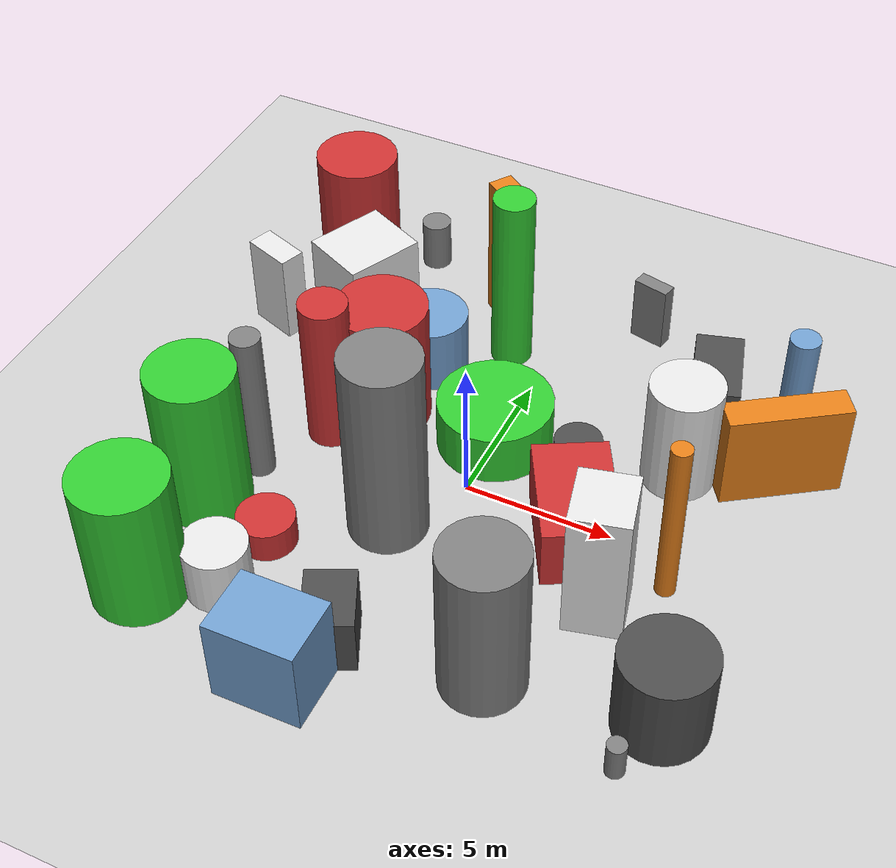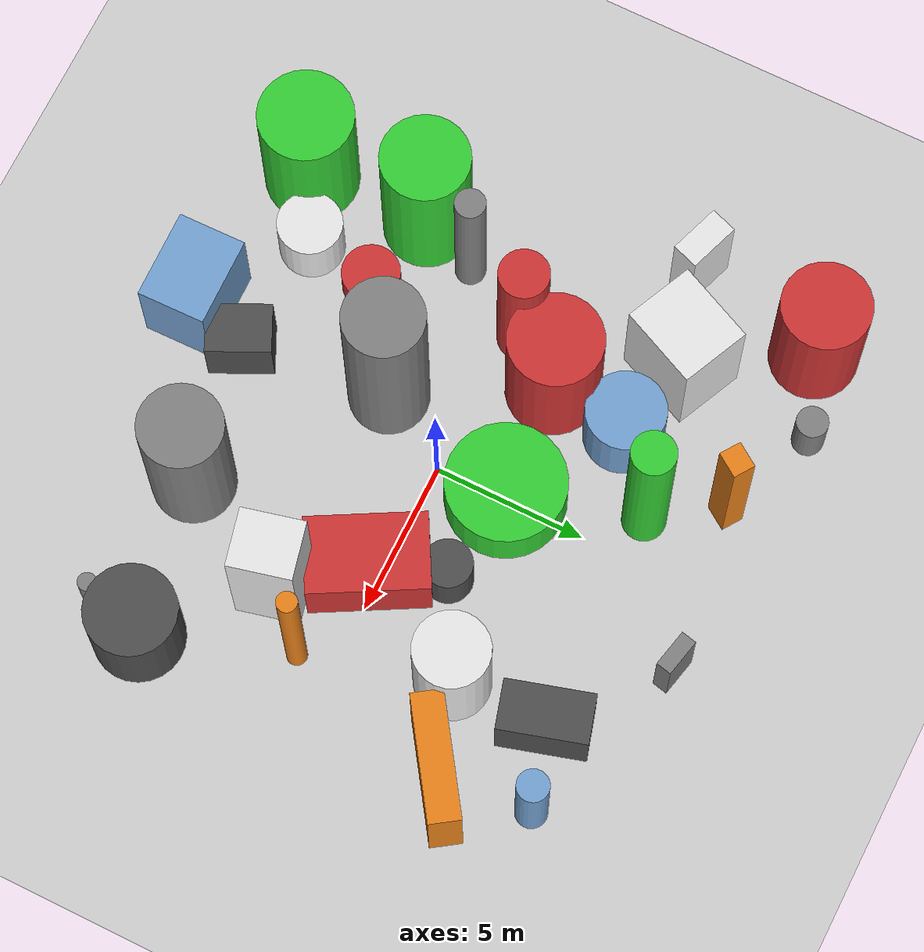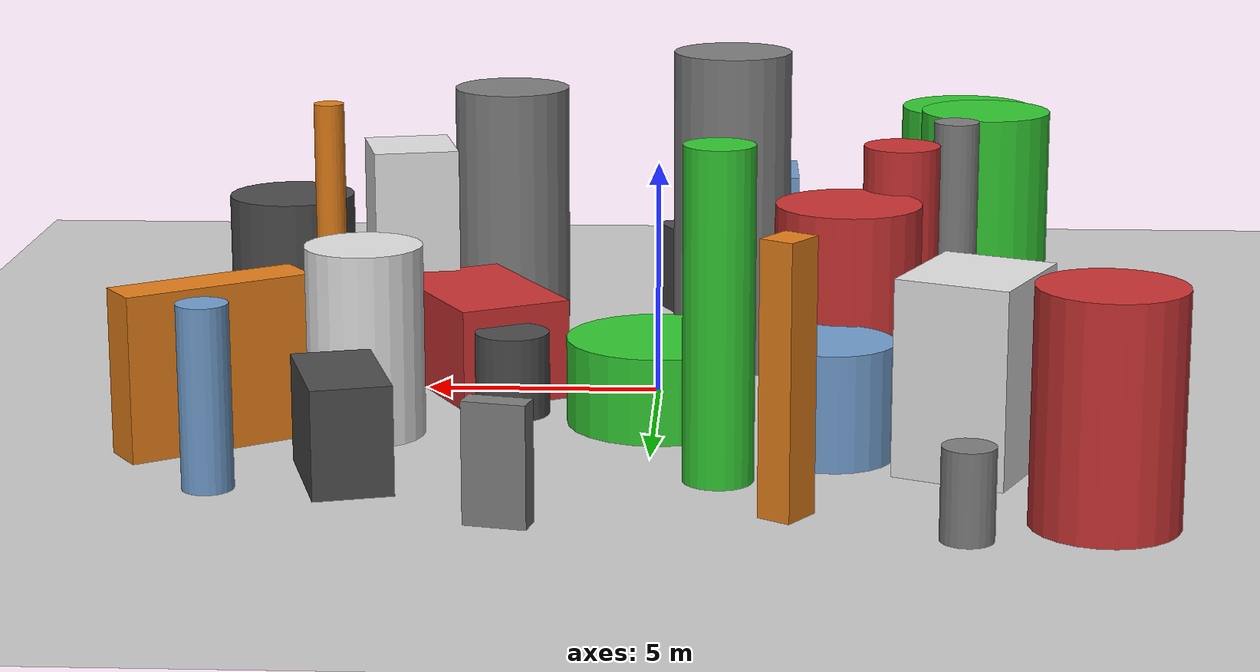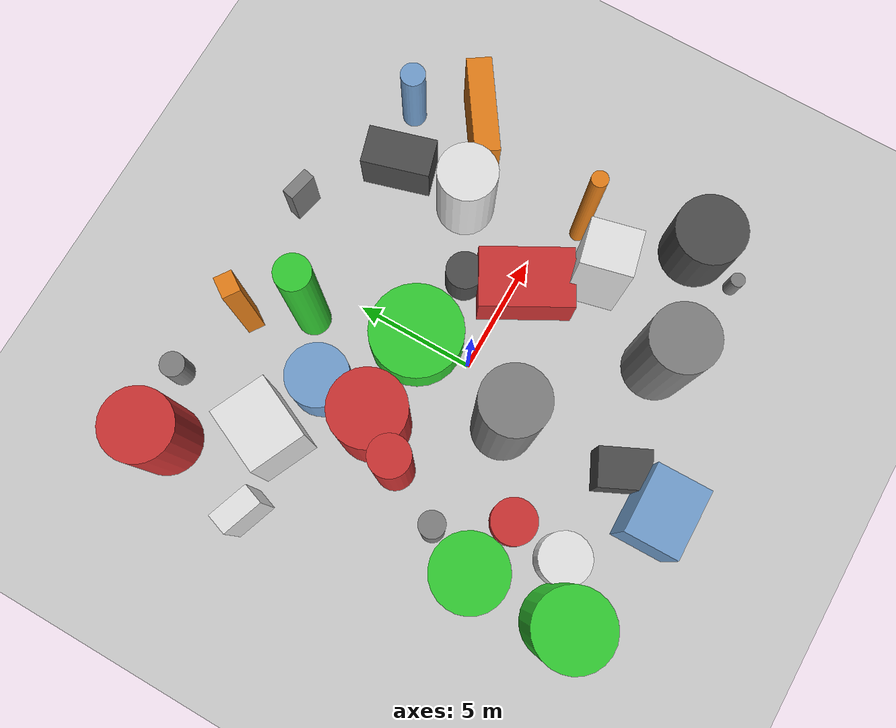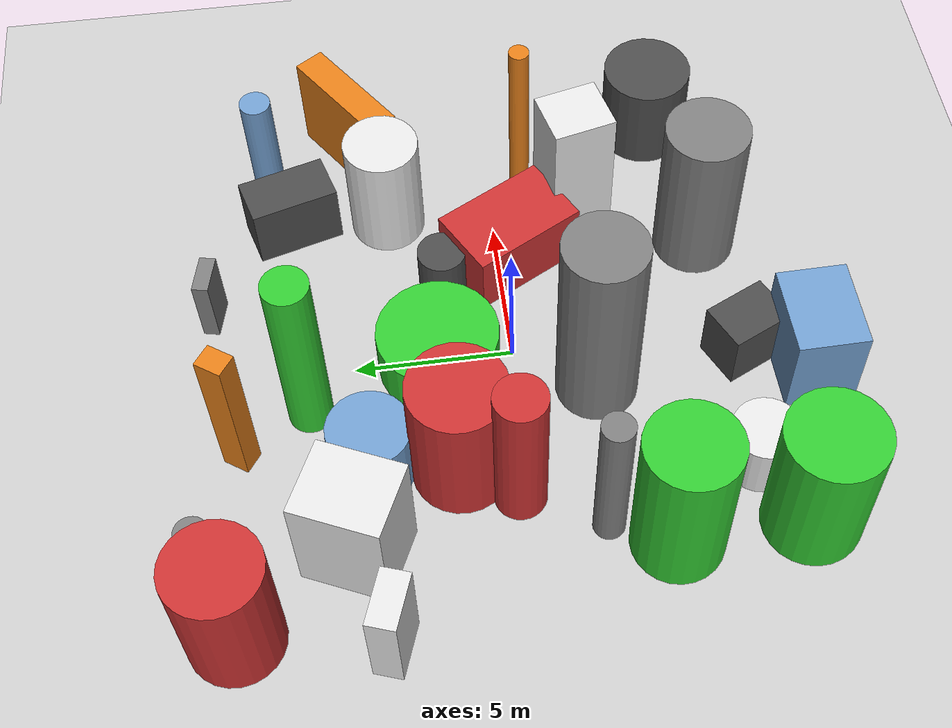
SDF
<?xml version='1.0'?>
<sdf version='1.6'>
  <world name='default'>
    <!-- Sun light -->
    <light name='sun' type='directional'>
      <cast_shadows>1</cast_shadows>
      <pose>0 0 10 0 0 0</pose>
      <diffuse>0.8 0.8 0.8 1</diffuse>
      <specular>0.2 0.2 0.2 1</specular>
      <attenuation>
        <range>1000</range>
        <constant>0.9</constant>
        <linear>0.01</linear>
        <quadratic>0.001</quadratic>
      </attenuation>
      <direction>-0.5 0.1 -0.9</direction>
    </light>

    <!-- Ground plane -->
    <model name='ground_plane'>
      <static>1</static>
      <link name='link'>
        <collision name='collision'>
          <geometry>
            <plane>
              <normal>0 0 1</normal>
              <size>100 100</size>
            </plane>
          </geometry>
          <surface>
            <contact>
              <collide_bitmask>65535</collide_bitmask>
              <ode/>
            </contact>
            <friction>
              <ode>
                <mu>100</mu>
                <mu2>50</mu2>
              </ode>
              <torsional><ode/></torsional>
            </friction>
            <bounce/>
          </surface>
          <max_contacts>10</max_contacts>
        </collision>
        <visual name='visual'>
          <cast_shadows>0</cast_shadows>
          <geometry>
            <plane>
              <normal>0 0 1</normal>
              <size>100 100</size>
            </plane>
          </geometry>
          <material>
            <script>
              <uri>file://media/materials/scripts/gazebo.material</uri>
              <n>Gazebo/Grey</n>
            </script>
          </material>
        </visual>
      </link>
    </model>

    <!-- Environment -->
    <magnetic_field>6e-06 2.3e-05 -4.2e-05</magnetic_field>
    <atmosphere type='adiabatic'/>
    <physics name='default_physics' default='0' type='ode'>
      <gravity>0 0 -9.8</gravity>
      <max_step_size>0.004</max_step_size>
      <real_time_factor>1</real_time_factor>
      <real_time_update_rate>250</real_time_update_rate>
    </physics>
    <scene>
      <ambient>0.4 0.4 0.4 1</ambient>
      <background>0.7 0.7 0.7 1</background>
      <shadows>1</shadows>
    </scene>
    <wind/>
    <spherical_coordinates>
      <surface_model>EARTH_WGS84</surface_model>
      <latitude_deg>0</latitude_deg>
      <longitude_deg>0</longitude_deg>
      <elevation>0</elevation>
      <heading_deg>0</heading_deg>
    </spherical_coordinates>

    <!-- ============ OBSTACLES (30) ============ -->
    <model name='obs_00'>
      <static>1</static>
      <link name='link'>
        <visual name='visual'>
          <geometry>
            <cylinder>
              <radius>0.8068</radius>
              <length>5.5290</length>
            </cylinder>
          </geometry>
          <material>
            <script>
              <n>Gazebo/Red</n>
              <uri>file://media/materials/scripts/gazebo.material</uri>
            </script>
            <ambient>0.8 0.2 0.2 1</ambient>
          </material>
        </visual>
        <collision name='collision'>
          <geometry>
            <cylinder>
              <radius>0.8068</radius>
              <length>5.5290</length>
            </cylinder>
          </geometry>
          <max_contacts>10</max_contacts>
          <surface>
            <contact><ode/></contact>
            <bounce/>
            <friction>
              <ode><mu>1</mu><mu2>1</mu2></ode>
              <torsional><ode/></torsional>
            </friction>
          </surface>
        </collision>
      </link>
      <pose>-5.1451 0.4221 2.7645 0 0 2.0659</pose>
    </model>

    <model name='obs_01'>
      <static>1</static>
      <link name='link'>
        <visual name='visual'>
          <geometry>
            <cylinder>
              <radius>1.3433</radius>
              <length>5.5272</length>
            </cylinder>
          </geometry>
          <material>
            <script>
              <n>Gazebo/Grey</n>
              <uri>file://media/materials/scripts/gazebo.material</uri>
            </script>
            <ambient>0.5 0.5 0.5 1</ambient>
          </material>
        </visual>
        <collision name='collision'>
          <geometry>
            <cylinder>
              <radius>1.3433</radius>
              <length>5.5272</length>
            </cylinder>
          </geometry>
          <max_contacts>10</max_contacts>
          <surface>
            <contact><ode/></contact>
            <bounce/>
            <friction>
              <ode><mu>1</mu><mu2>1</mu2></ode>
              <torsional><ode/></torsional>
            </friction>
          </surface>
        </collision>
      </link>
      <pose>3.7063 -6.6100 2.7636 0 0 1.7694</pose>
    </model>

    <model name='obs_02'>
      <static>1</static>
      <link name='link'>
        <visual name='visual'>
          <geometry>
            <cylinder>
              <radius>0.9463</radius>
              <length>1.0738</length>
            </cylinder>
          </geometry>
          <material>
            <script>
              <n>Gazebo/Red</n>
              <uri>file://media/materials/scripts/gazebo.material</uri>
            </script>
            <ambient>0.8 0.2 0.2 1</ambient>
          </material>
        </visual>
        <collision name='collision'>
          <geometry>
            <cylinder>
              <radius>0.9463</radius>
              <length>1.0738</length>
            </cylinder>
          </geometry>
          <max_contacts>10</max_contacts>
          <surface>
            <contact><ode/></contact>
            <bounce/>
            <friction>
              <ode><mu>1</mu><mu2>1</mu2></ode>
              <torsional><ode/></torsional>
            </friction>
          </surface>
        </collision>
      </link>
      <pose>-4.6216 -4.6319 0.5369 0 0 3.0339</pose>
    </model>

    <model name='obs_03'>
      <static>1</static>
      <link name='link'>
        <visual name='visual'>
          <geometry>
            <cylinder>
              <radius>1.5317</radius>
              <length>4.9060</length>
            </cylinder>
          </geometry>
          <material>
            <script>
              <n>Gazebo/Green</n>
              <uri>file://media/materials/scripts/gazebo.material</uri>
            </script>
            <ambient>0.2 0.8 0.2 1</ambient>
          </material>
        </visual>
        <collision name='collision'>
          <geometry>
            <cylinder>
              <radius>1.5317</radius>
              <length>4.9060</length>
            </cylinder>
          </geometry>
          <max_contacts>10</max_contacts>
          <surface>
            <contact><ode/></contact>
            <bounce/>
            <friction>
              <ode><mu>1</mu><mu2>1</mu2></ode>
              <torsional><ode/></torsional>
            </friction>
          </surface>
        </collision>
      </link>
      <pose>-7.0813 -8 2.4530 0 0 0.6974</pose>
    </model>

    <model name='obs_04'>
      <static>1</static>
      <link name='link'>
        <visual name='visual'>
          <geometry>
            <box>
              <size>2.0602 1.8690 4.8617</size>
            </box>
          </geometry>
          <material>
            <script>
              <n>Gazebo/White</n>
              <uri>file://media/materials/scripts/gazebo.material</uri>
            </script>
            <ambient>0.9 0.9 0.9 1</ambient>
          </material>
        </visual>
        <collision name='collision'>
          <geometry>
            <box>
              <size>2.0602 1.8690 4.8617</size>
            </box>
          </geometry>
          <max_contacts>10</max_contacts>
          <surface>
            <contact><ode/></contact>
            <bounce/>
            <friction>
              <ode><mu>1</mu><mu2>1</mu2></ode>
              <torsional><ode/></torsional>
            </friction>
          </surface>
        </collision>
      </link>
      <pose>5.6533 -2.7775 2.4309 0 0 1.8072</pose>
    </model>

    <model name='obs_05'>
      <static>1</static>
      <link name='link'>
        <visual name='visual'>
          <geometry>
            <box>
              <size>1.0276 3.9920 3.4139</size>
            </box>
          </geometry>
          <material>
            <script>
              <n>Gazebo/Orange</n>
              <uri>file://media/materials/scripts/gazebo.material</uri>
            </script>
            <ambient>0.9 0.5 0.1 1</ambient>
          </material>
        </visual>
        <collision name='collision'>
          <geometry>
            <box>
              <size>1.0276 3.9920 3.4139</size>
            </box>
          </geometry>
          <max_contacts>10</max_contacts>
          <surface>
            <contact><ode/></contact>
            <bounce/>
            <friction>
              <ode><mu>1</mu><mu2>1</mu2></ode>
              <torsional><ode/></torsional>
            </friction>
          </surface>
        </collision>
      </link>
      <pose>8.8844 4.4180 1.7069 0 0 2.1691</pose>
    </model>

    <model name='obs_06'>
      <static>1</static>
      <link name='link'>
        <visual name='visual'>
          <geometry>
            <cylinder>
              <radius>1.9292</radius>
              <length>1.8125</length>
            </cylinder>
          </geometry>
          <material>
            <script>
              <n>Gazebo/Green</n>
              <uri>file://media/materials/scripts/gazebo.material</uri>
            </script>
            <ambient>0.2 0.8 0.2 1</ambient>
          </material>
        </visual>
        <collision name='collision'>
          <geometry>
            <cylinder>
              <radius>1.9292</radius>
              <length>1.8125</length>
            </cylinder>
          </geometry>
          <max_contacts>10</max_contacts>
          <surface>
            <contact><ode/></contact>
            <bounce/>
            <friction>
              <ode><mu>1</mu><mu2>1</mu2></ode>
              <torsional><ode/></torsional>
            </friction>
          </surface>
        </collision>
      </link>
      <pose>-0.0840 2.3334 0.9062 0 0 1.3068</pose>
    </model>

    <model name='obs_07'>
      <static>1</static>
      <link name='link'>
        <visual name='visual'>
          <geometry>
            <box>
              <size>1.5916 2.0937 2.0343</size>
            </box>
          </geometry>
          <material>
            <script>
              <n>Gazebo/DarkGrey</n>
              <uri>file://media/materials/scripts/gazebo.material</uri>
            </script>
            <ambient>0.3 0.3 0.3 1</ambient>
          </material>
        </visual>
        <collision name='collision'>
          <geometry>
            <box>
              <size>1.5916 2.0937 2.0343</size>
            </box>
          </geometry>
          <max_contacts>10</max_contacts>
          <surface>
            <contact><ode/></contact>
            <bounce/>
            <friction>
              <ode><mu>1</mu><mu2>1</mu2></ode>
              <torsional><ode/></torsional>
            </friction>
          </surface>
        </collision>
      </link>
      <pose>-0.8428 -7.2902 1.0172 0 0 0.4451</pose>
    </model>

    <model name='obs_08'>
      <static>1</static>
      <link name='link'>
        <visual name='visual'>
          <geometry>
            <cylinder>
              <radius>0.3306</radius>
              <length>6.0540</length>
            </cylinder>
          </geometry>
          <material>
            <script>
              <n>Gazebo/Orange</n>
              <uri>file://media/materials/scripts/gazebo.material</uri>
            </script>
            <ambient>0.9 0.5 0.1 1</ambient>
          </material>
        </visual>
        <collision name='collision'>
          <geometry>
            <cylinder>
              <radius>0.3306</radius>
              <length>6.0540</length>
            </cylinder>
          </geometry>
          <max_contacts>10</max_contacts>
          <surface>
            <contact><ode/></contact>
            <bounce/>
            <friction>
              <ode><mu>1</mu><mu2>1</mu2></ode>
              <torsional><ode/></torsional>
            </friction>
          </surface>
        </collision>
      </link>
      <pose>7.2440 -1.1955 3.0270 0 0 1.0942</pose>
    </model>

    <model name='obs_09'>
      <static>1</static>
      <link name='link'>
        <visual name='visual'>
          <geometry>
            <cylinder>
              <radius>0.7055</radius>
              <length>6.6713</length>
            </cylinder>
          </geometry>
          <material>
            <script>
              <n>Gazebo/Green</n>
              <uri>file://media/materials/scripts/gazebo.material</uri>
            </script>
            <ambient>0.2 0.8 0.2 1</ambient>
          </material>
        </visual>
        <collision name='collision'>
          <geometry>
            <cylinder>
              <radius>0.7055</radius>
              <length>6.6713</length>
            </cylinder>
          </geometry>
          <max_contacts>10</max_contacts>
          <surface>
            <contact><ode/></contact>
            <bounce/>
            <friction>
              <ode><mu>1</mu><mu2>1</mu2></ode>
              <torsional><ode/></torsional>
            </friction>
          </surface>
        </collision>
      </link>
      <pose>-1.3877 6.4707 3.3357 0 0 1.0019</pose>
    </model>

    <model name='obs_10'>
      <static>1</static>
      <link name='link'>
        <visual name='visual'>
          <geometry>
            <cylinder>
              <radius>0.7847</radius>
              <length>1.7655</length>
            </cylinder>
          </geometry>
          <material>
            <script>
              <n>Gazebo/DarkGrey</n>
              <uri>file://media/materials/scripts/gazebo.material</uri>
            </script>
            <ambient>0.3 0.3 0.3 1</ambient>
          </material>
        </visual>
        <collision name='collision'>
          <geometry>
            <cylinder>
              <radius>0.7847</radius>
              <length>1.7655</length>
            </cylinder>
          </geometry>
          <max_contacts>10</max_contacts>
          <surface>
            <contact><ode/></contact>
            <bounce/>
            <friction>
              <ode><mu>1</mu><mu2>1</mu2></ode>
              <torsional><ode/></torsional>
            </friction>
          </surface>
        </collision>
      </link>
      <pose>3.0207 1.8879 0.8828 0 0 0.0710</pose>
    </model>

    <model name='obs_11'>
      <static>1</static>
      <link name='link'>
        <visual name='visual'>
          <geometry>
            <cylinder>
              <radius>1.5199</radius>
              <length>4.6120</length>
            </cylinder>
          </geometry>
          <material>
            <script>
              <n>Gazebo/Red</n>
              <uri>file://media/materials/scripts/gazebo.material</uri>
            </script>
            <ambient>0.8 0.2 0.2 1</ambient>
          </material>
        </visual>
        <collision name='collision'>
          <geometry>
            <cylinder>
              <radius>1.5199</radius>
              <length>4.6120</length>
            </cylinder>
          </geometry>
          <max_contacts>10</max_contacts>
          <surface>
            <contact><ode/></contact>
            <bounce/>
            <friction>
              <ode><mu>1</mu><mu2>1</mu2></ode>
              <torsional><ode/></torsional>
            </friction>
          </surface>
        </collision>
      </link>
      <pose>-3.9913 2.0642 2.3060 0 0 2.9214</pose>
    </model>

    <model name='obs_12'>
      <static>1</static>
      <link name='link'>
        <visual name='visual'>
          <geometry>
            <box>
              <size>2.4595 3.8546 2.1593</size>
            </box>
          </geometry>
          <material>
            <script>
              <n>Gazebo/Red</n>
              <uri>file://media/materials/scripts/gazebo.material</uri>
            </script>
            <ambient>0.8 0.2 0.2 1</ambient>
          </material>
        </visual>
        <collision name='collision'>
          <geometry>
            <box>
              <size>2.4595 3.8546 2.1593</size>
            </box>
          </geometry>
          <max_contacts>10</max_contacts>
          <surface>
            <contact><ode/></contact>
            <bounce/>
            <friction>
              <ode><mu>1</mu><mu2>1</mu2></ode>
              <torsional><ode/></torsional>
            </friction>
          </surface>
        </collision>
      </link>
      <pose>3.9058 -0.4198 1.0796 0 0 0.5031</pose>
    </model>

    <model name='obs_13'>
      <static>1</static>
      <link name='link'>
        <visual name='visual'>
          <geometry>
            <cylinder>
              <radius>0.4948</radius>
              <length>5.6012</length>
            </cylinder>
          </geometry>
          <material>
            <script>
              <n>Gazebo/Grey</n>
              <uri>file://media/materials/scripts/gazebo.material</uri>
            </script>
            <ambient>0.5 0.5 0.5 1</ambient>
          </material>
        </visual>
        <collision name='collision'>
          <geometry>
            <cylinder>
              <radius>0.4948</radius>
              <length>5.6012</length>
            </cylinder>
          </geometry>
          <max_contacts>10</max_contacts>
          <surface>
            <contact><ode/></contact>
            <bounce/>
            <friction>
              <ode><mu>1</mu><mu2>1</mu2></ode>
              <torsional><ode/></torsional>
            </friction>
          </surface>
        </collision>
      </link>
      <pose>-6.4473 -2.0352 2.8006 0 0 1.9785</pose>
    </model>

    <model name='obs_14'>
      <static>1</static>
      <link name='link'>
        <visual name='visual'>
          <geometry>
            <cylinder>
              <radius>1.2861</radius>
              <length>2.3813</length>
            </cylinder>
          </geometry>
          <material>
            <script>
              <n>Gazebo/Blue</n>
              <uri>file://media/materials/scripts/gazebo.material</uri>
            </script>
            <ambient>0.447 0.624 0.812 1</ambient>
          </material>
        </visual>
        <collision name='collision'>
          <geometry>
            <cylinder>
              <radius>1.2861</radius>
              <length>2.3813</length>
            </cylinder>
          </geometry>
          <max_contacts>10</max_contacts>
          <surface>
            <contact><ode/></contact>
            <bounce/>
            <friction>
              <ode><mu>1</mu><mu2>1</mu2></ode>
              <torsional><ode/></torsional>
            </friction>
          </surface>
        </collision>
      </link>
      <pose>-3.6172 4.6975 1.1906 0 0 0.0917</pose>
    </model>

    <model name='obs_15'>
      <static>1</static>
      <link name='link'>
        <visual name='visual'>
          <geometry>
            <box>
              <size>0.5156 1.2518 2.3917</size>
            </box>
          </geometry>
          <material>
            <script>
              <n>Gazebo/Grey</n>
              <uri>file://media/materials/scripts/gazebo.material</uri>
            </script>
            <ambient>0.5 0.5 0.5 1</ambient>
          </material>
        </visual>
        <collision name='collision'>
          <geometry>
            <box>
              <size>0.5156 1.2518 2.3917</size>
            </box>
          </geometry>
          <max_contacts>10</max_contacts>
          <surface>
            <contact><ode/></contact>
            <bounce/>
            <friction>
              <ode><mu>1</mu><mu2>1</mu2></ode>
              <torsional><ode/></torsional>
            </friction>
          </surface>
        </collision>
      </link>
      <pose>2.6580 9.3553 1.1959 0 0 1.3495</pose>
    </model>

    <model name='obs_16'>
      <static>1</static>
      <link name='link'>
        <visual name='visual'>
          <geometry>
            <box>
              <size>0.7190 0.8561 5.3599</size>
            </box>
          </geometry>
          <material>
            <script>
              <n>Gazebo/Orange</n>
              <uri>file://media/materials/scripts/gazebo.material</uri>
            </script>
            <ambient>0.9 0.5 0.1 1</ambient>
          </material>
        </visual>
        <collision name='collision'>
          <geometry>
            <box>
              <size>0.7190 0.8561 5.3599</size>
            </box>
          </geometry>
          <max_contacts>10</max_contacts>
          <surface>
            <contact><ode/></contact>
            <bounce/>
            <friction>
              <ode><mu>1</mu><mu2>1</mu2></ode>
              <torsional><ode/></torsional>
            </friction>
          </surface>
        </collision>
      </link>
      <pose>-2.6997 8.6413 2.6799 0 0 2.5407</pose>
    </model>

    <model name='obs_17'>
      <static>1</static>
      <link name='link'>
        <visual name='visual'>
          <geometry>
            <cylinder>
              <radius>0.5146</radius>
              <length>1.7977</length>
            </cylinder>
          </geometry>
          <material>
            <script>
              <n>Gazebo/Grey</n>
              <uri>file://media/materials/scripts/gazebo.material</uri>
            </script>
            <ambient>0.5 0.5 0.5 1</ambient>
          </material>
        </visual>
        <collision name='collision'>
          <geometry>
            <cylinder>
              <radius>0.5146</radius>
              <length>1.7977</length>
            </cylinder>
          </geometry>
          <max_contacts>10</max_contacts>
          <surface>
            <contact><ode/></contact>
            <bounce/>
            <friction>
              <ode><mu>1</mu><mu2>1</mu2></ode>
              <torsional><ode/></torsional>
            </friction>
          </surface>
        </collision>
      </link>
      <pose>-6.0040 9.9453 0.8988 0 0 1.1492</pose>
    </model>

    <model name='obs_18'>
      <static>1</static>
      <link name='link'>
        <visual name='visual'>
          <geometry>
            <box>
              <size>2.3470 2.7369 3.9849</size>
            </box>
          </geometry>
          <material>
            <script>
              <n>Gazebo/White</n>
              <uri>file://media/materials/scripts/gazebo.material</uri>
            </script>
            <ambient>0.9 0.9 0.9 1</ambient>
          </material>
        </visual>
        <collision name='collision'>
          <geometry>
            <box>
              <size>2.3470 2.7369 3.9849</size>
            </box>
          </geometry>
          <max_contacts>10</max_contacts>
          <surface>
            <contact><ode/></contact>
            <bounce/>
            <friction>
              <ode><mu>1</mu><mu2>1</mu2></ode>
              <torsional><ode/></torsional>
            </friction>
          </surface>
        </collision>
      </link>
      <pose>-6.4015 5.3524 1.9924 0 0 2.7101</pose>
    </model>

    <model name='obs_19'>
      <static>1</static>
      <link name='link'>
        <visual name='visual'>
          <geometry>
            <box>
              <size>0.8998 1.7319 3.2893</size>
            </box>
          </geometry>
          <material>
            <script>
              <n>Gazebo/White</n>
              <uri>file://media/materials/scripts/gazebo.material</uri>
            </script>
            <ambient>0.9 0.9 0.9 1</ambient>
          </material>
        </visual>
        <collision name='collision'>
          <geometry>
            <box>
              <size>0.8998 1.7319 3.2893</size>
            </box>
          </geometry>
          <max_contacts>10</max_contacts>
          <surface>
            <contact><ode/></contact>
            <bounce/>
            <friction>
              <ode><mu>1</mu><mu2>1</mu2></ode>
              <torsional><ode/></torsional>
            </friction>
          </surface>
        </collision>
      </link>
      <pose>-9.4617 4.5443 1.6447 0 0 1.2332</pose>
    </model>

    <model name='obs_20'>
      <static>1</static>
      <link name='link'>
        <visual name='visual'>
          <geometry>
            <cylinder>
              <radius>1.4561</radius>
              <length>3.0821</length>
            </cylinder>
          </geometry>
          <material>
            <script>
              <n>Gazebo/DarkGrey</n>
              <uri>file://media/materials/scripts/gazebo.material</uri>
            </script>
            <ambient>0.3 0.3 0.3 1</ambient>
          </material>
        </visual>
        <collision name='collision'>
          <geometry>
            <cylinder>
              <radius>1.4561</radius>
              <length>3.0821</length>
            </cylinder>
          </geometry>
          <max_contacts>10</max_contacts>
          <surface>
            <contact><ode/></contact>
            <bounce/>
            <friction>
              <ode><mu>1</mu><mu2>1</mu2></ode>
              <torsional><ode/></torsional>
            </friction>
          </surface>
        </collision>
      </link>
      <pose>8.8595 -5.8070 1.5411 0 0 2.5564</pose>
    </model>

    <model name='obs_21'>
      <static>1</static>
      <link name='link'>
        <visual name='visual'>
          <geometry>
            <box>
              <size>2.8524 1.5962 2.1929</size>
            </box>
          </geometry>
          <material>
            <script>
              <n>Gazebo/DarkGrey</n>
              <uri>file://media/materials/scripts/gazebo.material</uri>
            </script>
            <ambient>0.3 0.3 0.3 1</ambient>
          </material>
        </visual>
        <collision name='collision'>
          <geometry>
            <box>
              <size>2.8524 1.5962 2.1929</size>
            </box>
          </geometry>
          <max_contacts>10</max_contacts>
          <surface>
            <contact><ode/></contact>
            <bounce/>
            <friction>
              <ode><mu>1</mu><mu2>1</mu2></ode>
              <torsional><ode/></torsional>
            </friction>
          </surface>
        </collision>
      </link>
      <pose>5.9537 6.6256 1.0964 0 0 1.8541</pose>
    </model>

    <model name='obs_22'>
      <static>1</static>
      <link name='link'>
        <visual name='visual'>
          <geometry>
            <cylinder>
              <radius>1.4329</radius>
              <length>4.5758</length>
            </cylinder>
          </geometry>
          <material>
            <script>
              <n>Gazebo/Red</n>
              <uri>file://media/materials/scripts/gazebo.material</uri>
            </script>
            <ambient>0.8 0.2 0.2 1</ambient>
          </material>
        </visual>
        <collision name='collision'>
          <geometry>
            <cylinder>
              <radius>1.4329</radius>
              <length>4.5758</length>
            </cylinder>
          </geometry>
          <max_contacts>10</max_contacts>
          <surface>
            <contact><ode/></contact>
            <bounce/>
            <friction>
              <ode><mu>1</mu><mu2>1</mu2></ode>
              <torsional><ode/></torsional>
            </friction>
          </surface>
        </collision>
      </link>
      <pose>-8.6168 8.9558 2.2879 0 0 0.5751</pose>
    </model>

    <model name='obs_23'>
      <static>1</static>
      <link name='link'>
        <visual name='visual'>
          <geometry>
            <cylinder>
              <radius>1.2134</radius>
              <length>3.9613</length>
            </cylinder>
          </geometry>
          <material>
            <script>
              <n>Gazebo/White</n>
              <uri>file://media/materials/scripts/gazebo.material</uri>
            </script>
            <ambient>0.9 0.9 0.9 1</ambient>
          </material>
        </visual>
        <collision name='collision'>
          <geometry>
            <cylinder>
              <radius>1.2134</radius>
              <length>3.9613</length>
            </cylinder>
          </geometry>
          <max_contacts>10</max_contacts>
          <surface>
            <contact><ode/></contact>
            <bounce/>
            <friction>
              <ode><mu>1</mu><mu2>1</mu2></ode>
              <torsional><ode/></torsional>
            </friction>
          </surface>
        </collision>
      </link>
      <pose>5.9009 3.4596 1.9806 0 0 1.8737</pose>
    </model>

    <model name='obs_24'>
      <static>1</static>
      <link name='link'>
        <visual name='visual'>
          <geometry>
            <cylinder>
              <radius>1.4329</radius>
              <length>5.5168</length>
            </cylinder>
          </geometry>
          <material>
            <script>
              <n>Gazebo/Green</n>
              <uri>file://media/materials/scripts/gazebo.material</uri>
            </script>
            <ambient>0.2 0.8 0.2 1</ambient>
          </material>
        </visual>
        <collision name='collision'>
          <geometry>
            <cylinder>
              <radius>1.4329</radius>
              <length>5.5168</length>
            </cylinder>
          </geometry>
          <max_contacts>10</max_contacts>
          <surface>
            <contact><ode/></contact>
            <bounce/>
            <friction>
              <ode><mu>1</mu><mu2>1</mu2></ode>
              <torsional><ode/></torsional>
            </friction>
          </surface>
        </collision>
      </link>
      <pose>-7.2164 -3.9433 2.7584 0 0 1.9965</pose>
    </model>

    <model name='obs_25'>
      <static>1</static>
      <link name='link'>
        <visual name='visual'>
          <geometry>
            <cylinder>
              <radius>1.0558</radius>
              <length>1.9821</length>
            </cylinder>
          </geometry>
          <material>
            <script>
              <n>Gazebo/White</n>
              <uri>file://media/materials/scripts/gazebo.material</uri>
            </script>
            <ambient>0.9 0.9 0.9 1</ambient>
          </material>
        </visual>
        <collision name='collision'>
          <geometry>
            <cylinder>
              <radius>1.0558</radius>
              <length>1.9821</length>
            </cylinder>
          </geometry>
          <max_contacts>10</max_contacts>
          <surface>
            <contact><ode/></contact>
            <bounce/>
            <friction>
              <ode><mu>1</mu><mu2>1</mu2></ode>
              <torsional><ode/></torsional>
            </friction>
          </surface>
        </collision>
      </link>
      <pose>-4.9464 -6.9171 0.9910 0 0 1.7433</pose>
    </model>

    <model name='obs_26'>
      <static>1</static>
      <link name='link'>
        <visual name='visual'>
          <geometry>
            <cylinder>
              <radius>1.2959</radius>
              <length>7.0587</length>
            </cylinder>
          </geometry>
          <material>
            <script>
              <n>Gazebo/Grey</n>
              <uri>file://media/materials/scripts/gazebo.material</uri>
            </script>
            <ambient>0.5 0.5 0.5 1</ambient>
          </material>
        </visual>
        <collision name='collision'>
          <geometry>
            <cylinder>
              <radius>1.2959</radius>
              <length>7.0587</length>
            </cylinder>
          </geometry>
          <max_contacts>10</max_contacts>
          <surface>
            <contact><ode/></contact>
            <bounce/>
            <friction>
              <ode><mu>1</mu><mu2>1</mu2></ode>
              <torsional><ode/></torsional>
            </friction>
          </surface>
        </collision>
      </link>
      <pose>-1.5374 -2.4602 3.5293 0 0 2.6452</pose>
    </model>

    <model name='obs_27'>
      <static>1</static>
      <link name='link'>
        <visual name='visual'>
          <geometry>
            <cylinder>
              <radius>0.5110</radius>
              <length>3.6876</length>
            </cylinder>
          </geometry>
          <material>
            <script>
              <n>Gazebo/Blue</n>
              <uri>file://media/materials/scripts/gazebo.material</uri>
            </script>
            <ambient>0.447 0.624 0.812 1</ambient>
          </material>
        </visual>
        <collision name='collision'>
          <geometry>
            <cylinder>
              <radius>0.5110</radius>
              <length>3.6876</length>
            </cylinder>
          </geometry>
          <max_contacts>10</max_contacts>
          <surface>
            <contact><ode/></contact>
            <bounce/>
            <friction>
              <ode><mu>1</mu><mu2>1</mu2></ode>
              <torsional><ode/></torsional>
            </friction>
          </surface>
        </collision>
      </link>
      <pose>8.4699 7.3927 1.8438 0 0 1.5224</pose>
    </model>

    <model name='obs_28'>
      <static>1</static>
      <link name='link'>
        <visual name='visual'>
          <geometry>
            <box>
              <size>2.2324 2.8964 3.0782</size>
            </box>
          </geometry>
          <material>
            <script>
              <n>Gazebo/Blue</n>
              <uri>file://media/materials/scripts/gazebo.material</uri>
            </script>
            <ambient>0.447 0.624 0.812 1</ambient>
          </material>
        </visual>
        <collision name='collision'>
          <geometry>
            <box>
              <size>2.2324 2.8964 3.0782</size>
            </box>
          </geometry>
          <max_contacts>10</max_contacts>
          <surface>
            <contact><ode/></contact>
            <bounce/>
            <friction>
              <ode><mu>1</mu><mu2>1</mu2></ode>
              <torsional><ode/></torsional>
            </friction>
          </surface>
        </collision>
      </link>
      <pose>-1.6340 -9.2647 1.5391 0 0 1.5879</pose>
    </model>

    <model name='obs_29'>
      <static>1</static>
      <link name='link'>
        <visual name='visual'>
          <geometry>
            <cylinder>
              <radius>0.3029</radius>
              <length>1.2160</length>
            </cylinder>
          </geometry>
          <material>
            <script>
              <n>Gazebo/Grey</n>
              <uri>file://media/materials/scripts/gazebo.material</uri>
            </script>
            <ambient>0.5 0.5 0.5 1</ambient>
          </material>
        </visual>
        <collision name='collision'>
          <geometry>
            <cylinder>
              <radius>0.3029</radius>
              <length>1.2160</length>
            </cylinder>
          </geometry>
          <max_contacts>10</max_contacts>
          <surface>
            <contact><ode/></contact>
            <bounce/>
            <friction>
              <ode><mu>1</mu><mu2>1</mu2></ode>
              <torsional><ode/></torsional>
            </friction>
          </surface>
        </collision>
      </link>
      <pose>8.2880 -7.8126 0.6080 0 0 1.5353</pose>
    </model>

    <!-- GUI camera -->
    <gui fullscreen='0'>
      <camera name='user_camera'>
        <pose>-15 0 18 0 0.85 0.15</pose>
        <view_controller>orbit</view_controller>
        <projection_type>perspective</projection_type>
      </camera>
    </gui>
  </world>
</sdf>
